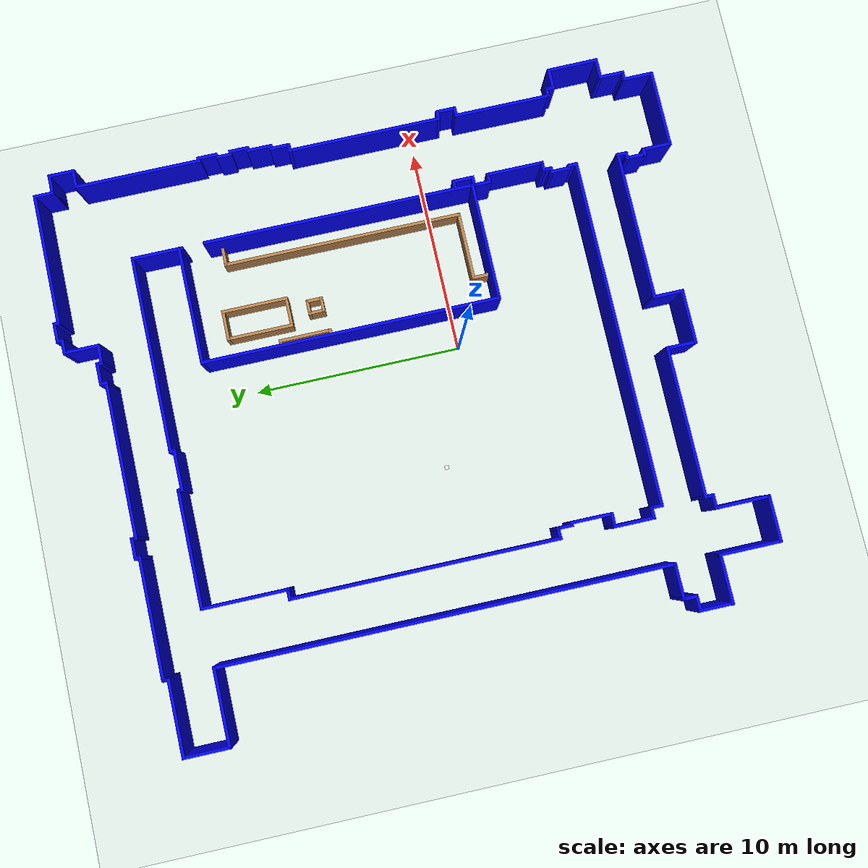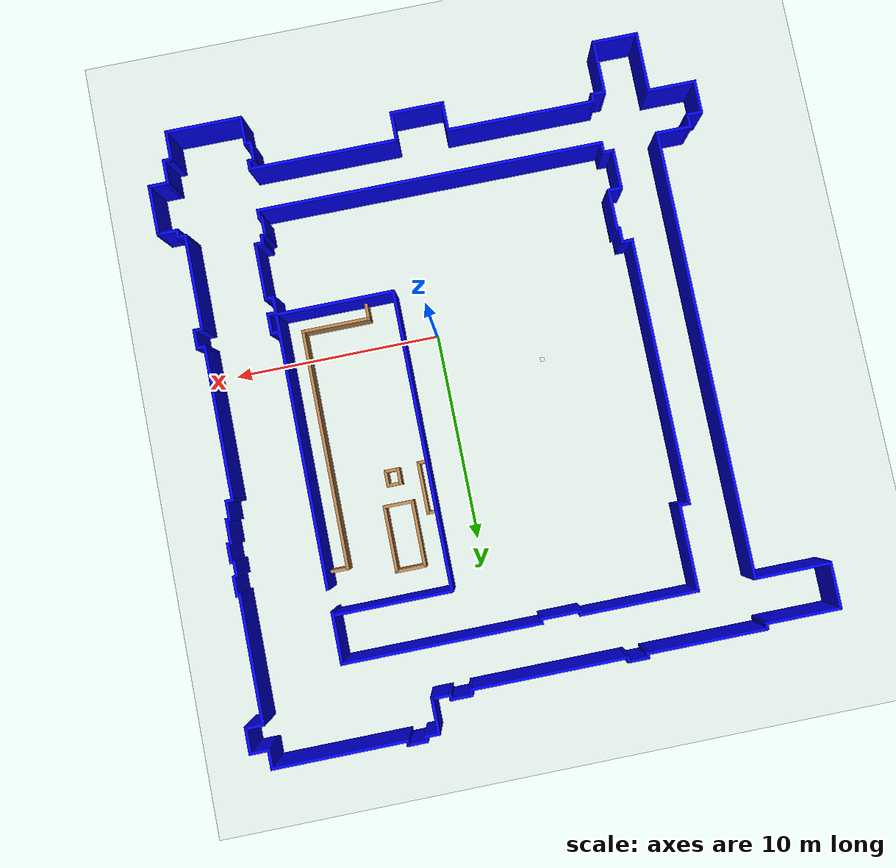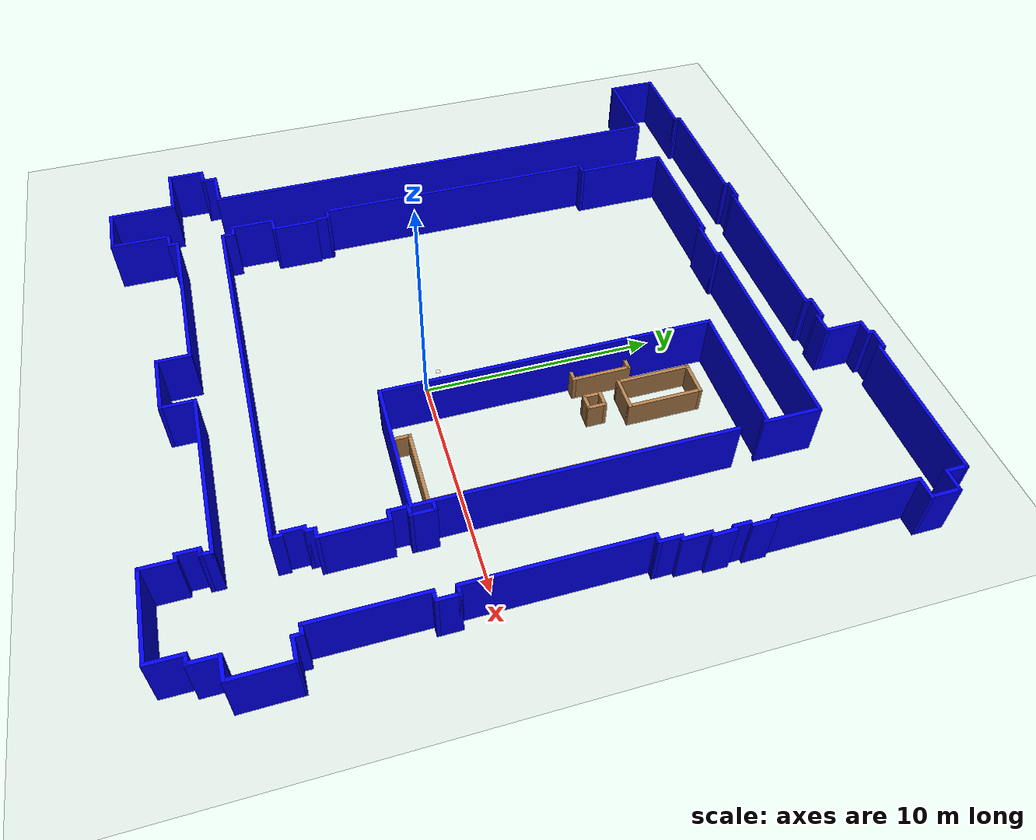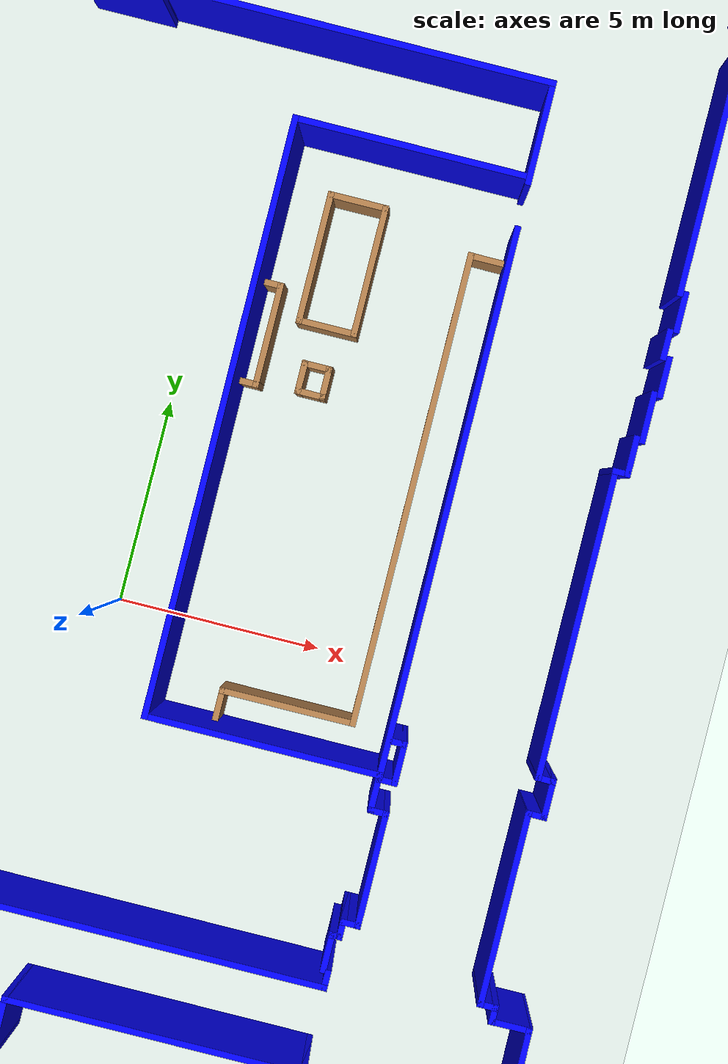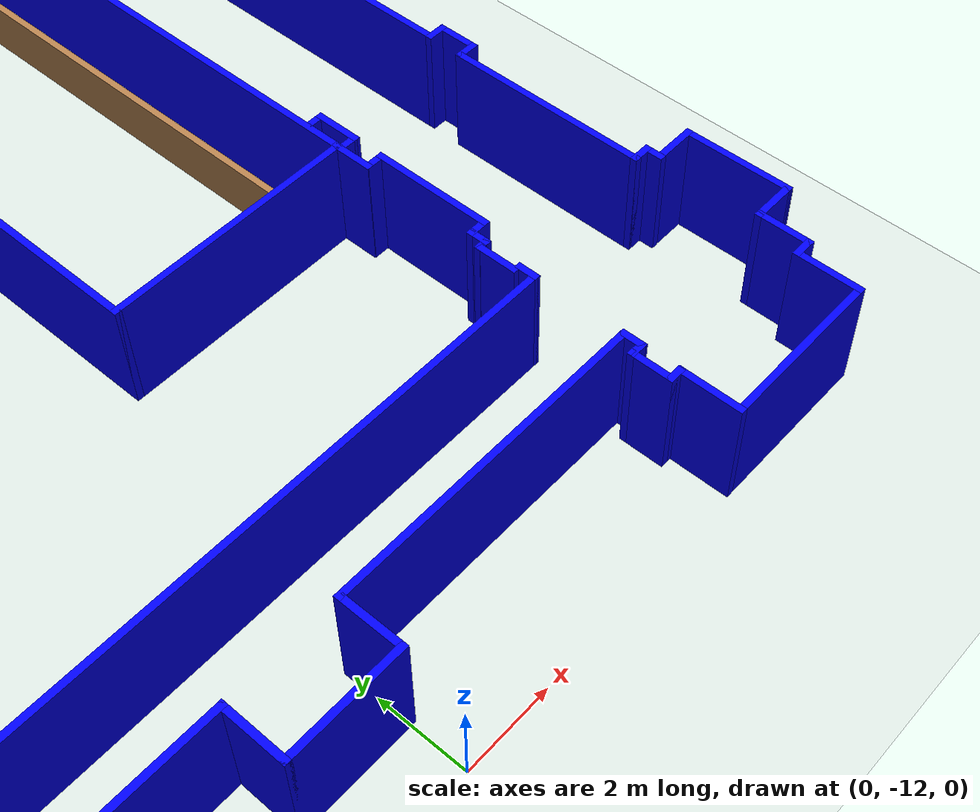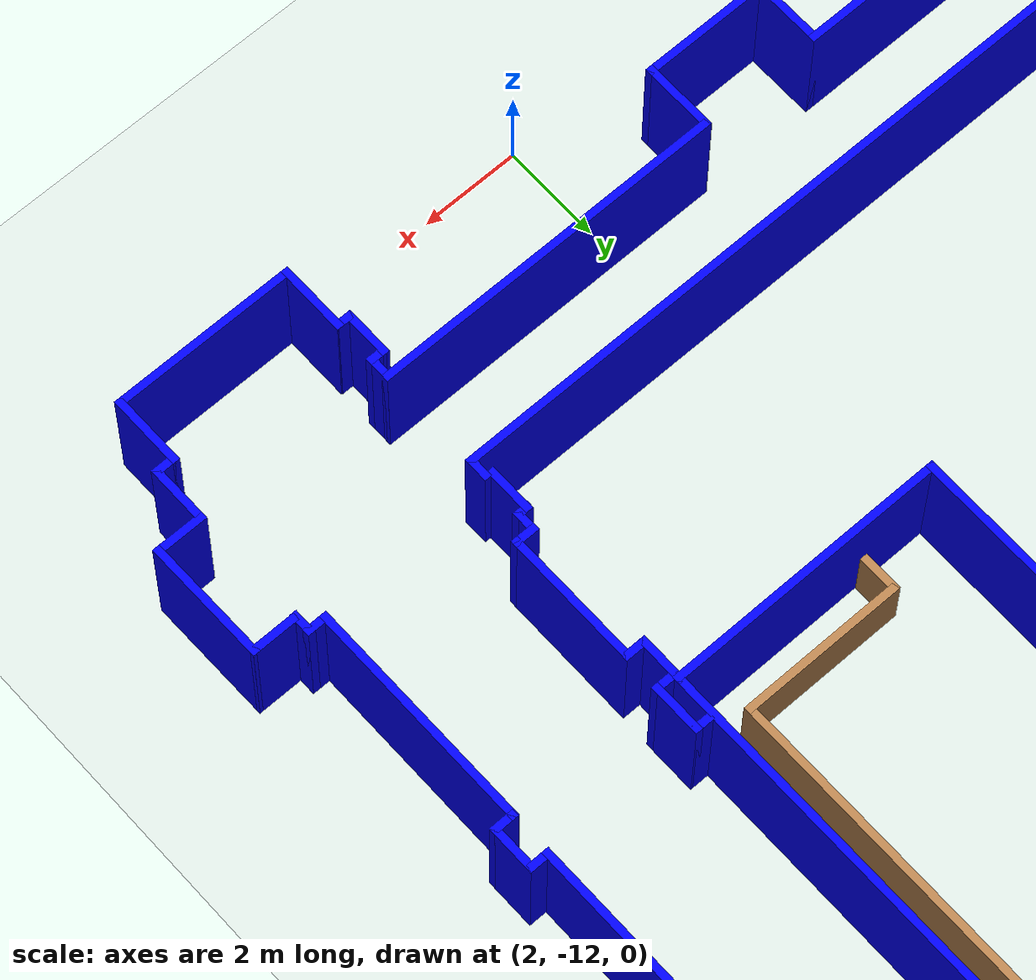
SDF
<sdf version="1.7">
 <world name="a2230_v2">
  <physics type="ode">
   <max_step_size>0.003</max_step_size>
   <real_time_factor>1.0</real_time_factor>
   <real_time_update_rate>1000</real_time_update_rate>
   <gravity>0 0 -9.8</gravity>
  </physics>
  <plugin name="gz::sim::systems::Physics" filename="libgz-sim-physics-system.so"/>
  <plugin name="gz::sim::systems::UserCommands" filename="libgz-sim-user-commands-system.so"/>
  <plugin name="gz::sim::systems::SceneBroadcaster" filename="libgz-sim-scene-broadcaster-system.so"/>
  <plugin name="gz::sim::systems::Sensors" filename="libgz-sim-sensors-system.so">
   <render_engine>ogre2</render_engine>
  </plugin>
  <plugin name="gz::sim::systems::Imu" filename="libgz-sim-imu-system.so"/>
  <scene>
   <ambient>1 1 1 1</ambient>
   <background>0.3 0.7 0.9 1</background>
   <shadows>0</shadows>
   <grid>false</grid>
  </scene>
  <spherical_coordinates>
   <surface_model>EARTH_WGS84</surface_model>
   <world_frame_orientation>ENU</world_frame_orientation>
   <latitude_deg>-22.986687</latitude_deg>
   <longitude_deg>-43.202501</longitude_deg>
   <elevation>0</elevation>
   <heading_deg>0</heading_deg>
  </spherical_coordinates>
  <model name="global_offset_group">
   <pose>-5.19 1.56 0 0 0 0</pose>
   <include><uri>package://mobile_manip/models/my_ground_plane</uri></include>
   <include><uri>package://mobile_manip/models/A2230_arena</uri></include>
   <include>
    <pose>0 0 -5 0 0 0</pose>
    <uri>package://mobile_manip/models/april_tags/Apriltag36_11_00002</uri>
   </include>
  </model>
 </world>
</sdf>

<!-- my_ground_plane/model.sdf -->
<sdf version="1.4">
<model name="my_ground_plane">
  <static>true</static>
    <link name="link">
      <collision name='collision'>
        <geometry>
          <plane>
            <normal>0 0 1</normal>
            <size>150 150</size>
          </plane>
        </geometry>
        <surface>
          <friction>
            <ode>
              <mu>100</mu>
              <mu2>100</mu2>
              <slip1>0.0</slip1>
              <slip2>0.0</slip2>
              <fdir1>0 0 0</fdir1>
            </ode>
          </friction>
          <bounce>
            <restitution_coefficient>0</restitution_coefficient>
            <threshold>1e+06</threshold>
          </bounce>
          <contact>
            <ode>
              <kp>100000000.0</kp>
              <kd>10000.0</kd>
              <max_vel>0.01</max_vel>
              <min_depth>0.0001</min_depth>
            </ode>
          </contact>
        </surface>
        <max_contacts>10</max_contacts>
      </collision>
      <visual name="visual">
        <cast_shadows>false</cast_shadows>
        <geometry>
          <plane>
            <normal>0 0 1</normal>
            <size>40 40</size>
          </plane>
        </geometry>
      </visual>
    </link>
  </model>
</sdf>

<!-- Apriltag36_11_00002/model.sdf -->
<sdf version="1.9">
  <model name="tag36_11_00002">
    <static>true</static>
    <link name="link">
      <visual name="visual">
        <geometry>
          <box>
            <size>0.21 0.21 0.001</size>
          </box>
        </geometry>
        <material>
          <ambient>1 1 1 1</ambient>
          <diffuse>1 1 1 1</diffuse>
          <specular>0.5 0.5 0.5 1</specular>
          <pbr>
            <metal>
              <albedo_map>materials/textures/tag36_11_00002.png</albedo_map>
              <roughness>0.5</roughness>
              <metalness>0.0</metalness>
            </metal>
          </pbr>
        </material>
      </visual>
      <collision name="collision">
        <geometry>
          <box>
            <size>0.21 0.21 0.001</size>
          </box>
        </geometry>
      </collision>
    </link>
  </model>
</sdf>
